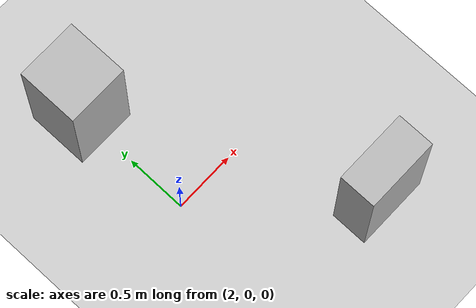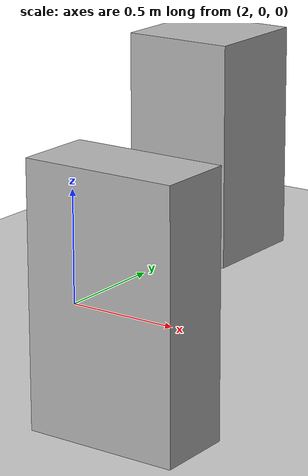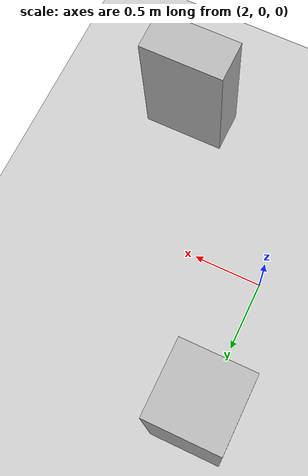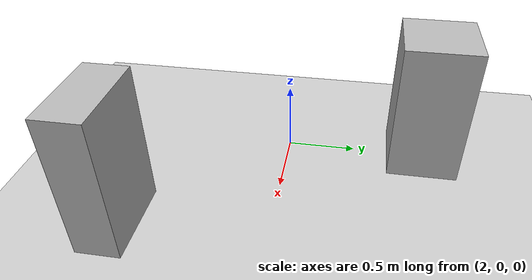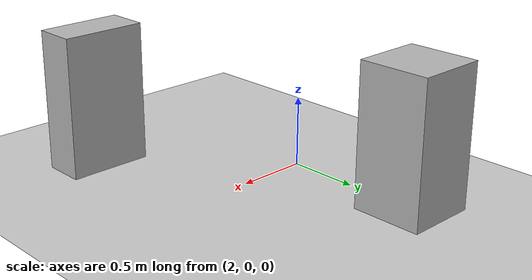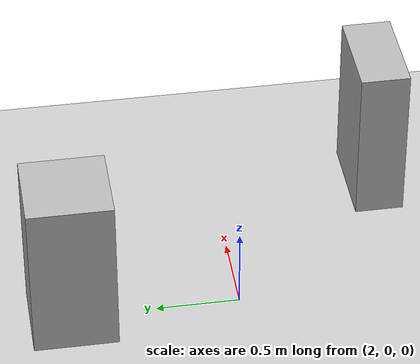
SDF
<?xml version="1.0" ?>
<sdf version="1.6">
  <world name="default">
    <include>
      <uri>model://ground_plane</uri>
    </include>
    <include>
      <uri>model://sun</uri>
    </include>

    <!-- A few simple obstacles -->
    <model name="box_obstacle_1">
      <static>true</static>
      <pose>2 1 0.5 0 0 0</pose>
      <link name="link">
        <collision name="collision">
          <geometry><box><size>0.5 0.5 1.0</size></box></geometry>
        </collision>
        <visual name="visual">
          <geometry><box><size>0.5 0.5 1.0</size></box></geometry>
        </visual>
      </link>
    </model>

    <model name="box_obstacle_2">
      <static>true</static>
      <pose>3 -1 0.5 0 0 0</pose>
      <link name="link">
        <collision name="collision">
          <geometry><box><size>0.6 0.3 1.0</size></box></geometry>
        </collision>
        <visual name="visual">
          <geometry><box><size>0.6 0.3 1.0</size></box></geometry>
        </visual>
      </link>
    </model>

  </world>
</sdf>
